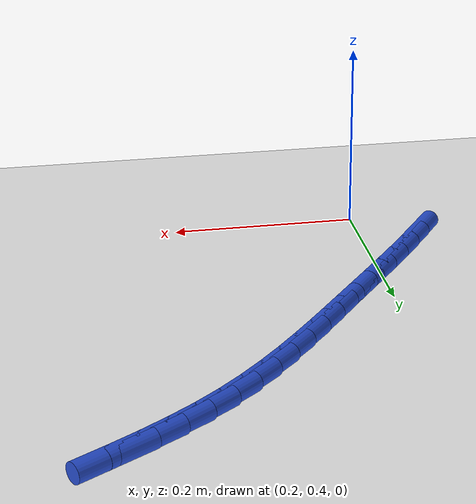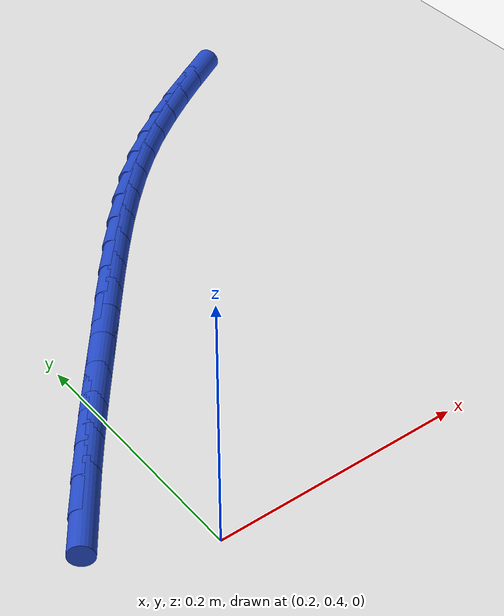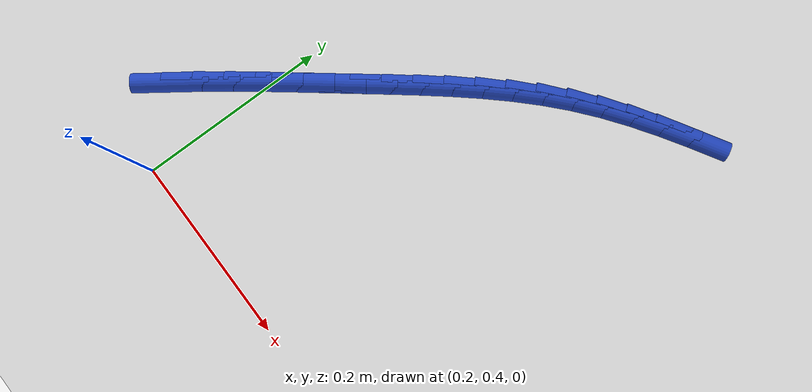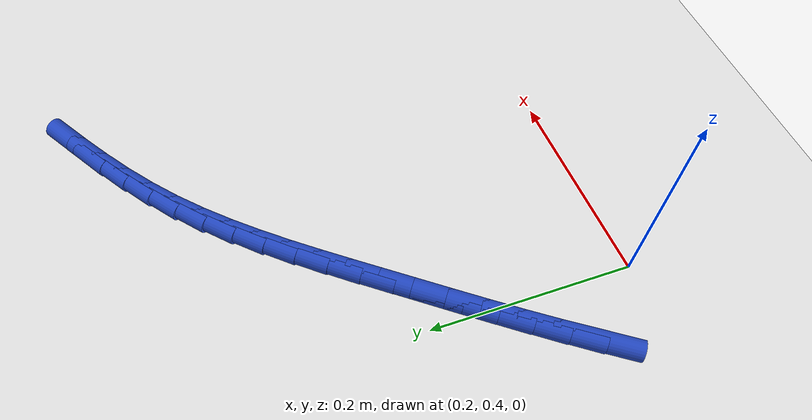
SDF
<sdf version="1.6">
 <world name="default">
  <model name="ground_plane">
   <static>1</static>
   <link name="link">
    <collision name="collision">
     <geometry><plane><normal>0 0 1</normal><size>100 100</size></plane></geometry>
     <surface><friction><ode><mu>100</mu><mu2>50</mu2></ode></friction></surface>
    </collision>
    <visual name="visual">
     <cast_shadows>0</cast_shadows>
     <geometry><plane><normal>0 0 1</normal><size>100 100</size></plane></geometry>
     <material>
      <script><uri>file://media/materials/scripts/gazebo.material</uri><name>Gazebo/WhiteGlow</name></script>
     </material>
    </visual>
   </link>
  </model>
  <model name="line">
   <link name="link_16">
    <pose>0.13981550525093922 0.46864393279842426 0.01 0 1.57 0.9507972357020474</pose>
    <collision name="collision">
     <geometry><cylinder><radius>0.01</radius><length>0.08</length></cylinder></geometry>
    </collision>
    <visual name="visual">
     <material>
      <script><name>Gazebo/Blue</name><uri>file://media/materials/scripts/gazebo.material</uri></script>
     </material>
     <geometry><cylinder><radius>0.01</radius><length>0.08</length></cylinder></geometry>
    </visual>
   </link>
   <link name="link_17">
    <pose>0.15806650839722147 0.4942088690225771 0.01 0 1.57 0.9322499465729354</pose>
    <collision name="collision">
     <geometry><cylinder><radius>0.01</radius><length>0.08</length></cylinder></geometry>
    </collision>
    <visual name="visual">
     <material>
      <script><name>Gazebo/Blue</name><uri>file://media/materials/scripts/gazebo.material</uri></script>
     </material>
     <geometry><cylinder><radius>0.01</radius><length>0.08</length></cylinder></geometry>
    </visual>
   </link>
   <link name="link_18">
    <pose>0.17685956480437148 0.5195266511744236 0.01 0 1.57 0.9182701466582173</pose>
    <collision name="collision">
     <geometry><cylinder><radius>0.01</radius><length>0.08</length></cylinder></geometry>
    </collision>
    <visual name="visual">
     <material>
      <script><name>Gazebo/Blue</name><uri>file://media/materials/scripts/gazebo.material</uri></script>
     </material>
     <geometry><cylinder><radius>0.01</radius><length>0.08</length></cylinder></geometry>
    </visual>
   </link>
   <link name="link_19">
    <pose>0.19606113926882968 0.5446530848244959 0.01 0 1.57 0.9087766129086358</pose>
    <collision name="collision">
     <geometry><cylinder><radius>0.01</radius><length>0.08</length></cylinder></geometry>
    </collision>
    <visual name="visual">
     <material>
      <script><name>Gazebo/Blue</name><uri>file://media/materials/scripts/gazebo.material</uri></script>
     </material>
     <geometry><cylinder><radius>0.01</radius><length>0.08</length></cylinder></geometry>
    </visual>
   </link>
   <link name="link_20">
    <pose>0.2155376965870364 0.5696439755433259 0.01 0 1.57 0.9037122587128621</pose>
    <collision name="collision">
     <geometry><cylinder><radius>0.01</radius><length>0.08</length></cylinder></geometry>
    </collision>
    <visual name="visual">
     <material>
      <script><name>Gazebo/Blue</name><uri>file://media/materials/scripts/gazebo.material</uri></script>
     </material>
     <geometry><cylinder><radius>0.01</radius><length>0.08</length></cylinder></geometry>
    </visual>
   </link>
   <link name="link_21">
    <pose>0.235155701555432 0.5945551289014454 0.01 0 1.57 0.9030418218896888</pose>
    <collision name="collision">
     <geometry><cylinder><radius>0.01</radius><length>0.08</length></cylinder></geometry>
    </collision>
    <visual name="visual">
     <material>
      <script><name>Gazebo/Blue</name><uri>file://media/materials/scripts/gazebo.material</uri></script>
     </material>
     <geometry><cylinder><radius>0.01</radius><length>0.08</length></cylinder></geometry>
    </visual>
   </link>
   <link name="link_22">
    <pose>0.25478179350809294 0.6194422060765593 0.01 0 1.57 0.9036620928028535</pose>
    <collision name="collision">
     <geometry><cylinder><radius>0.01</radius><length>0.08</length></cylinder></geometry>
    </collision>
    <visual name="visual">
     <material>
      <script><name>Gazebo/Blue</name><uri>file://media/materials/scripts/gazebo.material</uri></script>
     </material>
     <geometry><cylinder><radius>0.01</radius><length>0.08</length></cylinder></geometry>
    </visual>
   </link>
   <link name="link_23">
    <pose>0.27435837320930523 0.6442981917522731 0.01 0 1.57 0.8976073200366024</pose>
    <collision name="collision">
     <geometry><cylinder><radius>0.01</radius><length>0.08</length></cylinder></geometry>
    </collision>
    <visual name="visual">
     <material>
      <script><name>Gazebo/Blue</name><uri>file://media/materials/scripts/gazebo.material</uri></script>
     </material>
     <geometry><cylinder><radius>0.01</radius><length>0.08</length></cylinder></geometry>
    </visual>
   </link>
   <link name="link_24">
    <pose>0.29402169698010006 0.6689556963079493 0.01 0 1.57 0.8835233571242196</pose>
    <collision name="collision">
     <geometry><cylinder><radius>0.01</radius><length>0.08</length></cylinder></geometry>
    </collision>
    <visual name="visual">
     <material>
      <script><name>Gazebo/Blue</name><uri>file://media/materials/scripts/gazebo.material</uri></script>
     </material>
     <geometry><cylinder><radius>0.01</radius><length>0.08</length></cylinder></geometry>
    </visual>
   </link>
   <link name="link_25">
    <pose>0.313938586843094 0.6932220434961034 0.01 0 1.57 0.8612462771705812</pose>
    <collision name="collision">
     <geometry><cylinder><radius>0.01</radius><length>0.08</length></cylinder></geometry>
    </collision>
    <visual name="visual">
     <material>
      <script><name>Gazebo/Blue</name><uri>file://media/materials/scripts/gazebo.material</uri></script>
     </material>
     <geometry><cylinder><radius>0.01</radius><length>0.08</length></cylinder></geometry>
    </visual>
   </link>
   <link name="link_26">
    <pose>0.3342758648209037 0.7169045570692514 0.01 0 1.57 0.8305760113585051</pose>
    <collision name="collision">
     <geometry><cylinder><radius>0.01</radius><length>0.08</length></cylinder></geometry>
    </collision>
    <visual name="visual">
     <material>
      <script><name>Gazebo/Blue</name><uri>file://media/materials/scripts/gazebo.material</uri></script>
     </material>
     <geometry><cylinder><radius>0.01</radius><length>0.08</length></cylinder></geometry>
    </visual>
   </link>
   <link name="link_27">
    <pose>0.3552003529361461 0.7398105607799093 0.01 0 1.57 0.7913202614106805</pose>
    <collision name="collision">
     <geometry><cylinder><radius>0.01</radius><length>0.08</length></cylinder></geometry>
    </collision>
    <visual name="visual">
     <material>
      <script><name>Gazebo/Blue</name><uri>file://media/materials/scripts/gazebo.material</uri></script>
     </material>
     <geometry><cylinder><radius>0.01</radius><length>0.08</length></cylinder></geometry>
    </visual>
   </link>
   <link name="link_28">
    <pose>0.3768788732114375 0.7617473783805924 0.01 0 1.57 0.7433607548576796</pose>
    <collision name="collision">
     <geometry><cylinder><radius>0.01</radius><length>0.08</length></cylinder></geometry>
    </collision>
    <visual name="visual">
     <material>
      <script><name>Gazebo/Blue</name><uri>file://media/materials/scripts/gazebo.material</uri></script>
     </material>
     <geometry><cylinder><radius>0.01</radius><length>0.08</length></cylinder></geometry>
    </visual>
   </link>
   <link name="link_29">
    <pose>0.3994782476693945 0.7825223336238171 0.01 0 1.57 0.6880846830388176</pose>
    <collision name="collision">
     <geometry><cylinder><radius>0.01</radius><length>0.08</length></cylinder></geometry>
    </collision>
    <visual name="visual">
     <material>
      <script><name>Gazebo/Blue</name><uri>file://media/materials/scripts/gazebo.material</uri></script>
     </material>
     <geometry><cylinder><radius>0.01</radius><length>0.08</length></cylinder></geometry>
    </visual>
   </link>
   <link name="link_30">
    <pose>0.423140295860783 0.8019754048748649 0.01 0 1.57 0.6365788960101656</pose>
    <collision name="collision">
     <geometry><cylinder><radius>0.01</radius><length>0.08</length></cylinder></geometry>
    </collision>
    <visual name="visual">
     <material>
      <script><name>Gazebo/Blue</name><uri>file://media/materials/scripts/gazebo.material</uri></script>
     </material>
     <geometry><cylinder><radius>0.01</radius><length>0.08</length></cylinder></geometry>
    </visual>
   </link>
   <link name="link_31">
    <pose>0.4478058052764403 0.8202091295015653 0.01 0 1.57 0.5943485693807677</pose>
    <collision name="collision">
     <geometry><cylinder><radius>0.01</radius><length>0.08</length></cylinder></geometry>
    </collision>
    <visual name="visual">
     <material>
      <script><name>Gazebo/Blue</name><uri>file://media/materials/scripts/gazebo.material</uri></script>
     </material>
     <geometry><cylinder><radius>0.01</radius><length>0.08</length></cylinder></geometry>
    </visual>
   </link>
   <link name="link_32">
    <pose>0.4733186847800422 0.8374525737235404 0.01 0 1.57 0.5614984114020866</pose>
    <collision name="collision">
     <geometry><cylinder><radius>0.01</radius><length>0.08</length></cylinder></geometry>
    </collision>
    <visual name="visual">
     <material>
      <script><name>Gazebo/Blue</name><uri>file://media/materials/scripts/gazebo.material</uri></script>
     </material>
     <geometry><cylinder><radius>0.01</radius><length>0.08</length></cylinder></geometry>
    </visual>
   </link>
   <link name="link_33">
    <pose>0.49952222074395985 0.8539356167685246 0.01 0 1.57 0.5379417118628834</pose>
    <collision name="collision">
     <geometry><cylinder><radius>0.01</radius><length>0.08</length></cylinder></geometry>
    </collision>
    <visual name="visual">
     <material>
      <script><name>Gazebo/Blue</name><uri>file://media/materials/scripts/gazebo.material</uri></script>
     </material>
     <geometry><cylinder><radius>0.01</radius><length>0.08</length></cylinder></geometry>
    </visual>
   </link>
  </model>
 </world>
</sdf>
